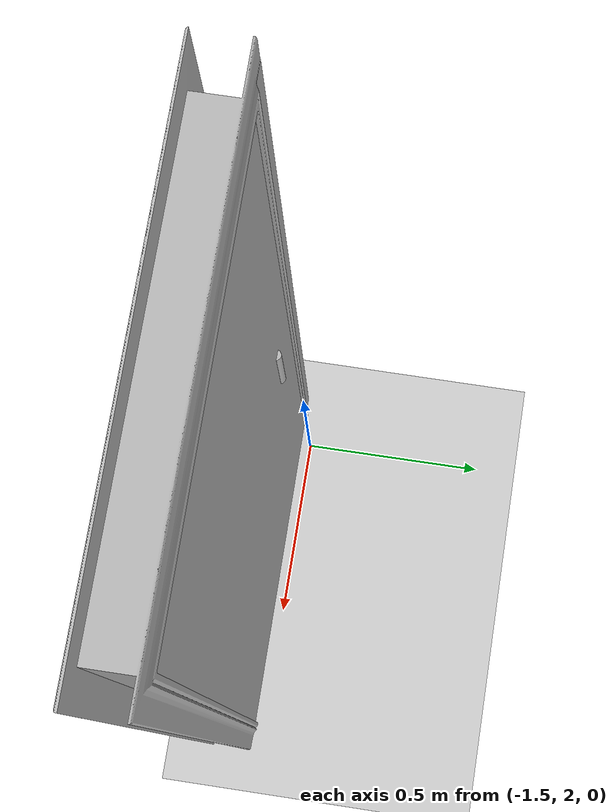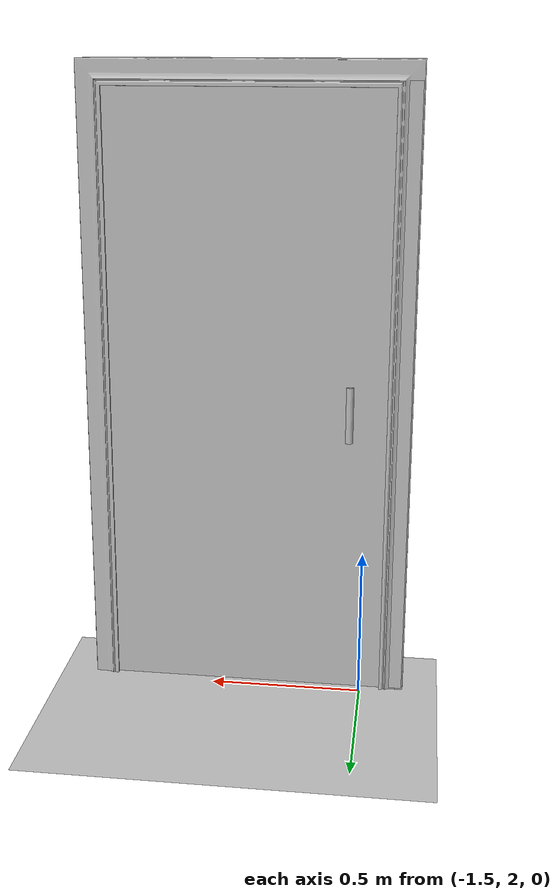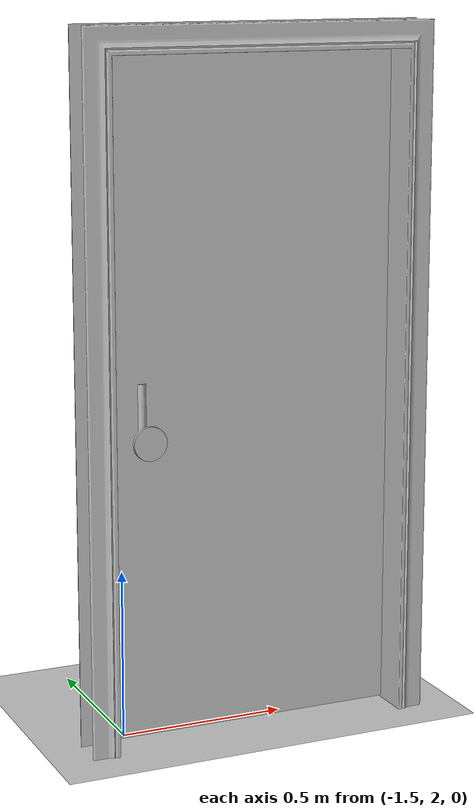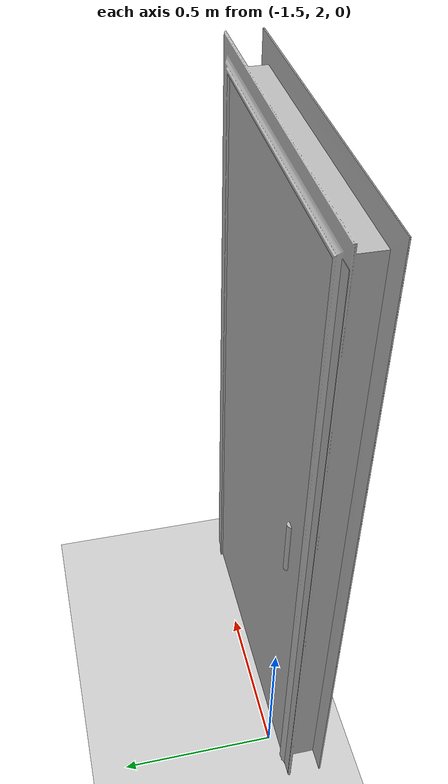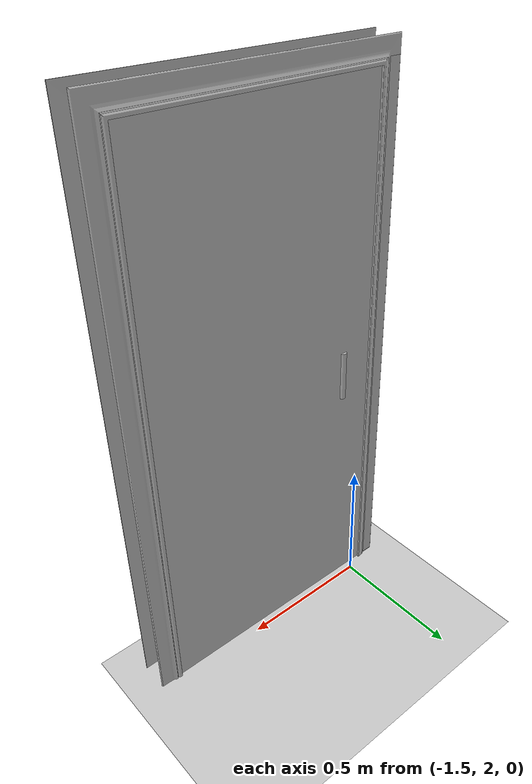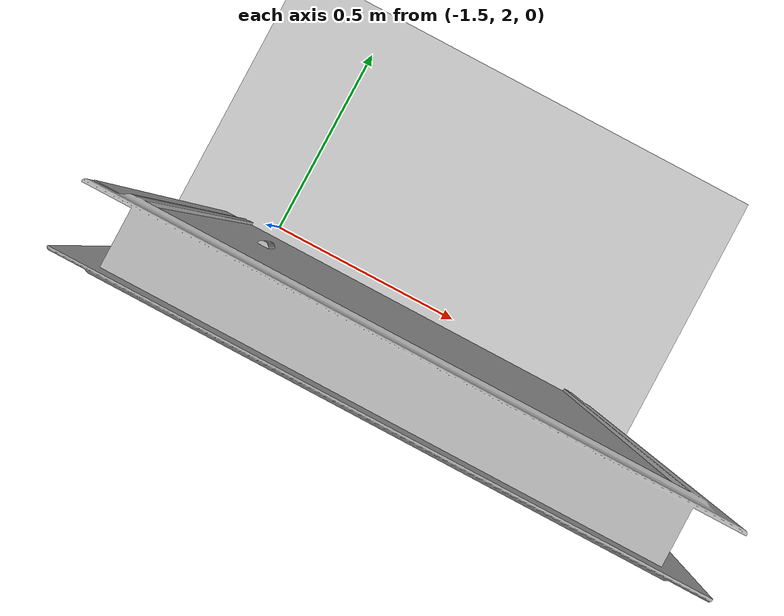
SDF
<sdf version="1.7">
 <world name="default">
  <physics type="ode">
   <max_step_size>0.001</max_step_size>
   <real_time_factor>1</real_time_factor>
   <real_time_update_rate>1000</real_time_update_rate>
  </physics>
  <light name="sun" type="directional">
   <pose>0 0 10 0 -0 0</pose>
   <diffuse>0.8 0.8 0.8 1</diffuse>
   <specular>0.2 0.2 0.2 1</specular>
   <attenuation>
    <range>1000</range>
    <constant>0.9</constant>
    <linear>0.01</linear>
    <quadratic>0.001</quadratic>
   </attenuation>
   <direction>-0.5 0.1 -0.9</direction>
   <spot><inner_angle>0</inner_angle><outer_angle>0</outer_angle><falloff>0</falloff></spot>
  </light>
  <model name="ground_plane">
   <static>1</static>
   <link name="link">
    <collision name="collision">
     <geometry><plane><normal>0 0 1</normal><size>100 100</size></plane></geometry>
     <surface>
      <contact><collide_bitmask>65535</collide_bitmask></contact>
      <friction><ode><mu>100</mu><mu2>50</mu2></ode></friction>
     </surface>
    </collision>
    <visual name="visual">
     <cast_shadows>0</cast_shadows>
     <geometry><plane><normal>0 0 1</normal><size>100 100</size></plane></geometry>
     <material>
      <script><uri>file://media/materials/scripts/gazebo.material</uri><name>Gazebo/Grey</name></script>
     </material>
    </visual>
   </link>
  </model>
  <gravity>0 0 -9.8</gravity>
  <magnetic_field>6e-06 2.3e-05 -4.2e-05</magnetic_field>
  <atmosphere type="adiabatic"/>
  <scene><ambient>0.4 0.4 0.4 1</ambient><background>0.7 0.7 0.7 1</background><shadows>1</shadows></scene>
  <spherical_coordinates>
   <surface_model>EARTH_WGS84</surface_model>
   <latitude_deg>0</latitude_deg>
   <longitude_deg>0</longitude_deg>
   <elevation>0</elevation>
   <heading_deg>0</heading_deg>
  </spherical_coordinates>
  <model name="door">
   <pose>-1.64577 1.97943 0 1.5708 -0 0</pose>
   <link name="door_frame">
    <inertial>
     <pose>0.105 0.2 0.01 0 -0 0</pose>
     <mass>30</mass>
     <inertia><ixx>1</ixx><ixy>0</ixy><ixz>0</ixz><iyy>1</iyy><iyz>0</iyz><izz>1</izz></inertia>
    </inertial>
    <visual name="visual_frame">
     <geometry><mesh><uri>model://door/meshes/frame.stl</uri><scale>0.1 0.1 0.1</scale></mesh></geometry>
    </visual>
    <collision name="collision_frame">
     <geometry><mesh><uri>model://door/meshes/frame.stl</uri><scale>0.1 0.1 0.1</scale></mesh></geometry>
    </collision>
   </link>
   <link name="door_body">
    <inertial>
     <pose>0.505 1.005 0.01 0 -0 0</pose>
     <mass>1</mass>
     <inertia><ixx>0.083</ixx><ixy>0</ixy><ixz>0</ixz><iyy>0.083</iyy><iyz>0</iyz><izz>0.083</izz></inertia>
    </inertial>
    <collision name="collision_door">
     <pose>0.505 1.005 0.01 0 -0 0</pose>
     <geometry><box><size>1 2 0.006</size></box></geometry>
    </collision>
    <visual name="visual_door">
     <pose>0.505 1.005 0.01 0 -0 0</pose>
     <geometry><box><size>1 2 0.006</size></box></geometry>
    </visual>
   </link>
   <link name="door_handle">
    <inertial>
     <pose>0.2 0.9 0.01 0 -0 0</pose>
     <mass>1</mass>
     <inertia><ixx>1</ixx><ixy>0</ixy><ixz>0</ixz><iyy>1</iyy><iyz>0</iyz><izz>1</izz></inertia>
    </inertial>
    <visual name="visual_handle">
     <pose>0.2 0.9 0.01 0 -0 0</pose>
     <geometry><mesh><uri>model://door/meshes/handle.stl</uri><scale>0.002 0.002 0.002</scale></mesh></geometry>
    </visual>
    <collision name="collision_handle">
     <pose>0.2 0.9 0.01 0 -0 0</pose>
     <geometry><mesh><uri>model://door/meshes/handle.stl</uri><scale>0.002 0.002 0.002</scale></mesh></geometry>
    </collision>
   </link>
   <joint name="handle_joint" type="fixed">
    <parent>door_body</parent>
    <child>door_handle</child>
    <pose>0.55 0.9 0.01 0 -0 0</pose>
   </joint>
   <joint name="door_hinge" type="revolute">
    <parent>door_frame</parent>
    <child>door_body</child>
    <pose>0.95 1.005 0.01 0 -0 0</pose>
    <axis>
     <xyz expressed_in="__model__">0 0 1</xyz>
     <dynamics>
      <damping>0.1</damping>
      <friction>0.1</friction>
      <spring_reference>0</spring_reference>
      <spring_stiffness>0</spring_stiffness>
     </dynamics>
     <limit><lower>0</lower><upper>1.57</upper></limit>
    </axis>
   </joint>
   <joint name="world_joint" type="revolute">
    <child>door_frame</child>
    <parent>world</parent>
    <axis>
     <limit><lower>0</lower><upper>0</upper></limit>
     <xyz expressed_in="__model__">0 1 0</xyz>
     <dynamics>
      <damping>1</damping>
      <spring_reference>0</spring_reference>
      <spring_stiffness>0</spring_stiffness>
     </dynamics>
    </axis>
    <physics><ode><cfm_damping>1</cfm_damping><limit><cfm>0</cfm><erp>0.2</erp></limit></ode></physics>
   </joint>
  </model>
 </world>
</sdf>
